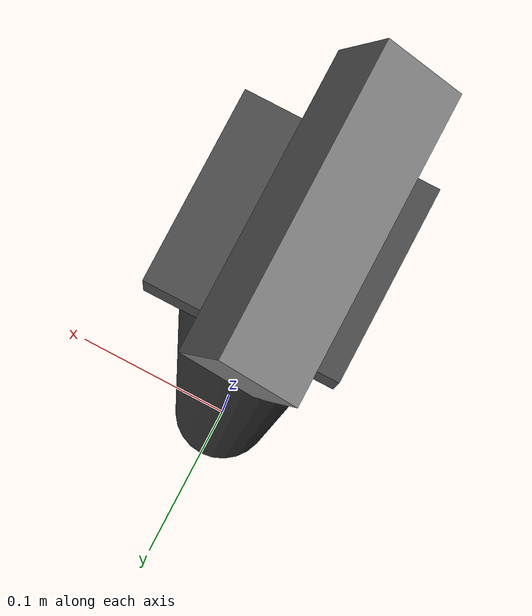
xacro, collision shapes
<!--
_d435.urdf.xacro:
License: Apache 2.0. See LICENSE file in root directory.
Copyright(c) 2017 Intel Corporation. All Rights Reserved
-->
<?xml version="1.0"?>
<robot name="camera_stand" xmlns:xacro="http://ros.org/wiki/xacro">

  <!-- Include the D435 camera macro -->
  <xacro:include filename="$(find realsense_gazebo_description)/urdf/_d435.urdf.xacro"/>

  <!-- World link for fixed base -->
  <link name="world"/>

  <!-- Camera stand base - tall tripod for elevated view -->
  <link name="camera_stand_base">
    <visual>
      <geometry>
        <cylinder radius="0.03" length="0.50"/>
      </geometry>
      <origin xyz="0 0 0.25" rpy="0 0 0"/>
      <material name="dark_metal">
        <color rgba="0.2 0.2 0.2 1"/>
      </material>
    </visual>
    <collision>
      <geometry>
        <cylinder radius="0.03" length="0.50"/>
      </geometry>
      <origin xyz="0 0 0.25" rpy="0 0 0"/>
    </collision>
    <inertial>
      <mass value="0.5"/>
      <inertia ixx="0.01" ixy="0" ixz="0" iyy="0.01" iyz="0" izz="0.002"/>
    </inertial>
  </link>

  <!-- Fix stand to world so it doesn't fall over -->
  <joint name="world_to_stand" type="fixed">
    <parent link="world"/>
    <child link="camera_stand_base"/>
    <origin xyz="0 0 0" rpy="0 0 0"/>
  </joint>

  <!-- Camera mount on top of stand -->
  <link name="camera_mount">
    <visual>
      <geometry>
        <box size="0.06 0.06 0.015"/>
      </geometry>
      <material name="dark_grey">
        <color rgba="0.3 0.3 0.3 1"/>
      </material>
    </visual>
    <collision>
      <geometry>
        <box size="0.06 0.06 0.015"/>
      </geometry>
    </collision>
    <inertial>
      <mass value="0.05"/>
      <inertia ixx="0.0005" ixy="0" ixz="0" iyy="0.0005" iyz="0" izz="0.0005"/>
    </inertial>
  </link>

  <joint name="stand_to_mount" type="fixed">
    <parent link="camera_stand_base"/>
    <child link="camera_mount"/>
    <origin xyz="0 0 0.51" rpy="0 0 0"/>
  </joint>

  <!-- Attach D435 camera to mount -->
  <xacro:sensor_d435 parent="camera_mount"
                     name="camera"
                     topics_ns="camera"
                     align_depth="true"
                     enable_pointCloud="true"
                     depth_width="640"
                     depth_height="480"
                     depth_fps="30"
                     color_width="640"
                     color_height="480"
                     color_fps="30"
                     visualize="false">
    <!-- Camera orientation: facing back towards robot (-x direction) with moderate downward tilt -->
    <!-- rpy: roll=0, pitch=0.45rad (~26 deg down), yaw=pi (facing back towards robot) -->
    <!-- This angle provides good coverage of table surface and robot arm -->
    <origin xyz="0 0 0.02" rpy="0 0.45 3.14159"/>
  </xacro:sensor_d435>

</robot>

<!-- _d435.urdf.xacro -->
<robot name="sensor_d435" xmlns:xacro="http://ros.org/wiki/xacro">
  <!--File includes-->
  <xacro:include filename="$(find realsense_gazebo_description)/urdf/_d435.gazebo.xacro"/>

  <xacro:macro name="sensor_d435" params="parent
                                          name:=camera
                                          topics_ns:=camera
                                          align_depth:=false
                                          enable_pointCloud:=false

                                          clip_distance:=-1.0
                                          depth_width:=1280
                                          depth_height:=720
                                          depth_fps:=30

                                          infra_width:=640
                                          infra_height:=480
                                          infra_fps:=30

                                          color_width:=1920
                                          color_height:=1080
                                          color_fps:=30

                                          visualize:=false
                                          *origin">
    <xacro:property name="M_PI" value="3.1415926535897931"/>

    <!-- The following values are approximate, and the camera node
     publishing TF values with actual calibrated camera extrinsic values -->
    <xacro:property name="d435_cam_depth_to_left_ir_offset" value="0.0"/>
    <xacro:property name="d435_cam_depth_to_right_ir_offset" value="-0.050"/>
    <xacro:property name="d435_cam_depth_to_color_offset" value="0.015"/>

    <!-- The following values model the aluminum peripherial case for the
  	D435 camera, with the camera joint represented by the actual
  	peripherial camera tripod mount -->
    <xacro:property name="d435_cam_width" value="0.090"/>
    <xacro:property name="d435_cam_height" value="0.025"/>
    <xacro:property name="d435_cam_depth" value="0.02505"/>
    <xacro:property name="d435_cam_mount_from_center_offset" value="0.0149"/>

    <!-- The following offset is relative the the physical D435 camera peripherial
  	camera tripod mount -->
    <xacro:property name="d435_cam_depth_px" value="${d435_cam_mount_from_center_offset}"/>
    <xacro:property name="d435_cam_depth_py" value="0.0175"/>
    <xacro:property name="d435_cam_depth_pz" value="${d435_cam_height/2}"/>

    <material name="${name}_aluminum">
	  <color rgba="0.5 0.5 0.5 1"/>
    </material>

    <!-- camera body, with origin at bottom screw mount -->
    <joint name="${name}_joint" type="fixed">
      <xacro:insert_block name="origin"/>
      <parent link="${parent}"/>
      <child link="${name}_bottom_screw_frame"/>
    </joint>
    <link name="${name}_bottom_screw_frame"/>

    <joint name="${name}_link_joint" type="fixed">
      <origin xyz="0 ${d435_cam_depth_py} ${d435_cam_depth_pz}" rpy="0 0 0"/>
      <parent link="${name}_bottom_screw_frame"/>
      <child link="${name}_link"/>
    </joint>

    <link name="${name}_link">
      <visual>
      <origin xyz="${d435_cam_mount_from_center_offset} ${-d435_cam_depth_py} 0" rpy="${M_PI/2} 0 ${M_PI/2}"/>
        <geometry>
          <mesh filename="package://realsense2_description/meshes/d435.dae"/>
        </geometry>
        <material name="${name}_aluminum"/>
      </visual>
      <collision>
        <origin xyz="0 ${-d435_cam_depth_py} 0" rpy="0 0 0"/>
        <geometry>
        <box size="${d435_cam_depth} ${d435_cam_width} ${d435_cam_height}"/>
        </geometry>
      </collision>
      <inertial>
        <!-- The following are not reliable values, and should not be used for modeling -->
        <mass value="0.564"/>
        <origin xyz="0 0 0"/>
        <inertia ixx="0.003881243" ixy="0.0" ixz="0.0" iyy="0.000498940" iyz="0.0" izz="0.003879257"/>
      </inertial>
    </link>

    <!-- camera depth joints and links -->
    <joint name="${name}_depth_joint" type="fixed">
      <origin xyz="0 0 0" rpy="0 0 0"/>
      <parent link="${name}_link"/>
      <child link="${name}_depth_frame"/>
    </joint>
    <link name="${name}_depth_frame"/>

    <joint name="${name}_depth_optical_joint" type="fixed">
      <origin xyz="0 0 0" rpy="${-M_PI/2} 0 ${-M_PI/2}"/>
      <parent link="${name}_depth_frame"/>
      <child link="${name}_depth_optical_frame"/>
    </joint>
    <link name="${name}_depth_optical_frame"/>

    <!-- camera left IR joints and links -->
    <joint name="${name}_left_ir_joint" type="fixed">
      <origin xyz="0 ${d435_cam_depth_to_left_ir_offset} 0" rpy="0 0 0"/>
      <parent link="${name}_depth_frame"/>
      <child link="${name}_left_ir_frame"/>
    </joint>
    <link name="${name}_left_ir_frame"/>

    <joint name="${name}_left_ir_optical_joint" type="fixed">
      <origin xyz="0 0 0" rpy="${-M_PI/2} 0 ${-M_PI/2}"/>
      <parent link="${name}_left_ir_frame"/>
      <child link="${name}_left_ir_optical_frame"/>
    </joint>
    <link name="${name}_left_ir_optical_frame"/>

    <!-- camera right IR joints and links -->
    <joint name="${name}_right_ir_joint" type="fixed">
      <origin xyz="0 ${d435_cam_depth_to_right_ir_offset} 0" rpy="0 0 0"/>
      <parent link="${name}_depth_frame"/>
      <child link="${name}_right_ir_frame"/>
    </joint>
    <link name="${name}_right_ir_frame"/>

    <joint name="${name}_right_ir_optical_joint" type="fixed">
      <origin xyz="0 0 0" rpy="${-M_PI/2} 0 ${-M_PI/2}"/>
      <parent link="${name}_right_ir_frame"/>
      <child link="${name}_right_ir_optical_frame"/>
    </joint>
    <link name="${name}_right_ir_optical_frame"/>

    <!-- camera color joints and links -->
    <joint name="${name}_color_joint" type="fixed">
      <origin xyz="0 ${d435_cam_depth_to_color_offset} 0" rpy="0 0 0"/>
      <parent link="${name}_depth_frame"/>
      <child link="${name}_color_frame"/>
    </joint>
    <link name="${name}_color_frame"/>

    <joint name="${name}_color_optical_joint" type="fixed">
      <origin xyz="0 0 0" rpy="${-M_PI/2} 0 ${-M_PI/2}"/>
      <parent link="${name}_color_frame"/>
      <child link="${name}_color_optical_frame"/>
    </joint>
    <link name="${name}_color_optical_frame"/>

    <!-- Realsense Gazebo Plugin -->
    <xacro:gazebo_d435  camera_name="${name}"
                        topics_ns="${topics_ns}"
                        reference_link="${name}_link"

                        depth_optical_frame="${name}_depth_optical_frame"
                        depth_width="${depth_width}"
                        depth_height="${depth_height}"
                        depth_fps="${depth_fps}"

                        color_optical_frame="${name}_color_optical_frame"
                        color_width="${color_width}"
                        color_height="${color_height}"
                        color_fps="${color_fps}"

                        infrared1_optical_frame="${name}_left_ir_optical_frame"
                        infrared2_optical_frame="${name}_right_ir_optical_frame"
                        infra_width="${infra_width}"
                        infra_height="${infra_height}"
                        infra_fps="${infra_fps}"

                        enable_pointCloud="${enable_pointCloud}"
                        clip_distance="${clip_distance}"
                        align_depth="${align_depth}"
                        visualize="${visualize}"
    />

  </xacro:macro>
</robot>
